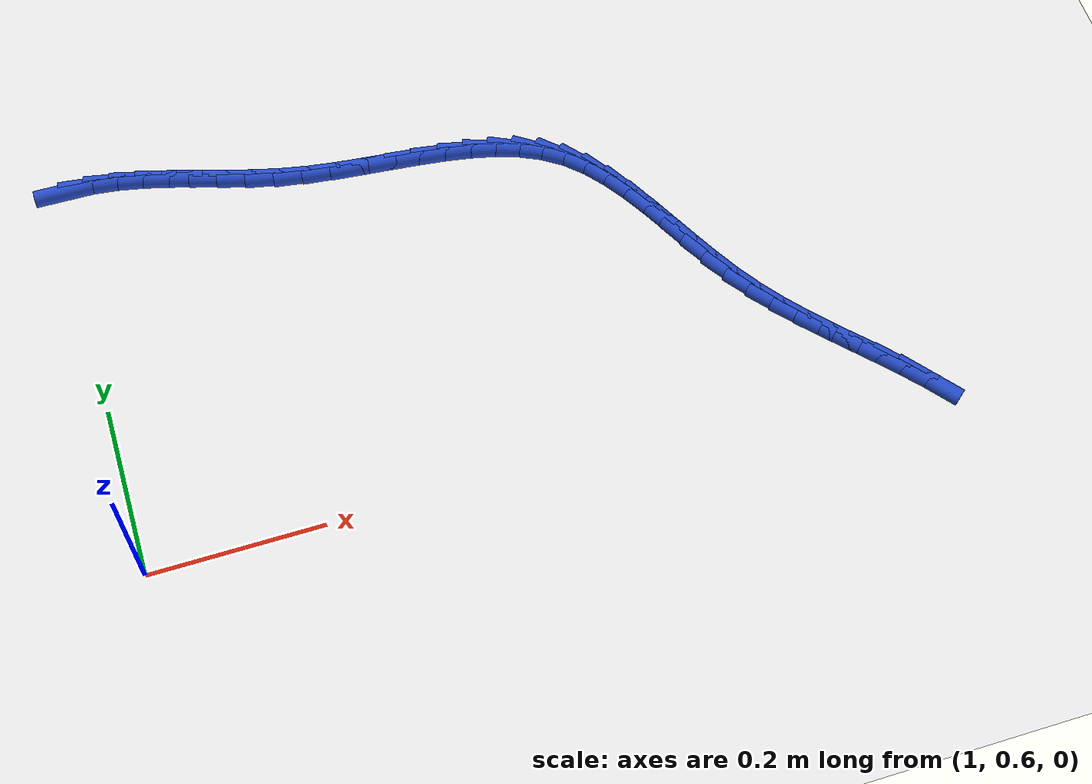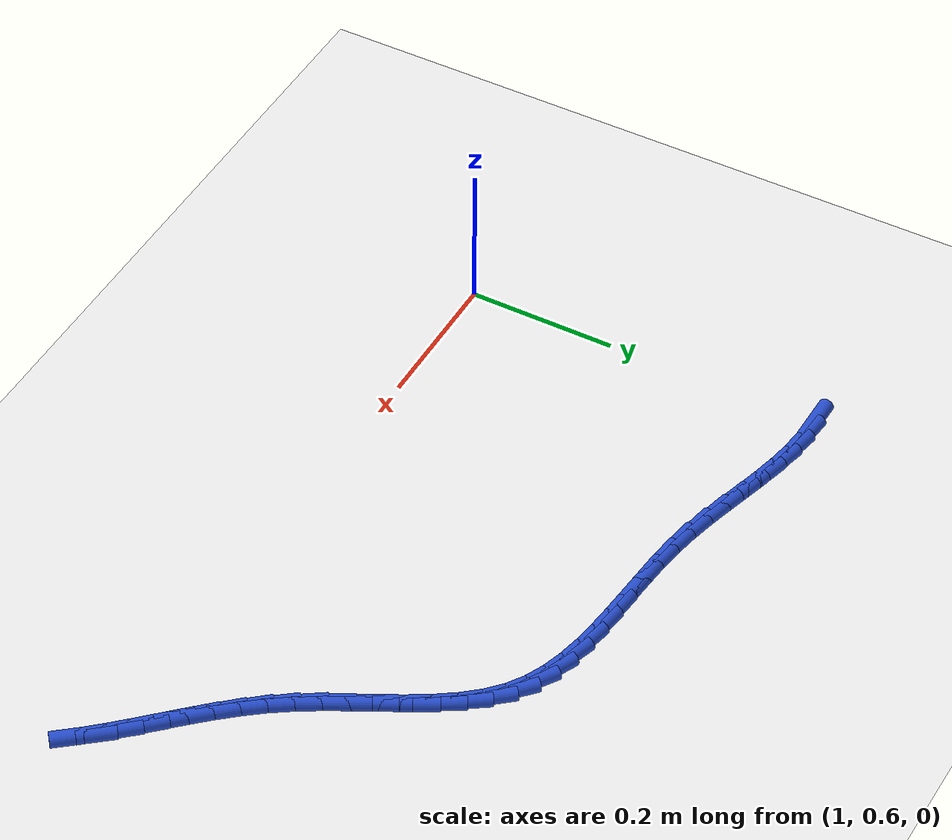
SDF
<sdf version="1.6">
 <world name="default">
  <model name="ground_plane">
   <static>1</static>
   <link name="link">
    <collision name="collision">
     <geometry><plane><normal>0 0 1</normal><size>100 100</size></plane></geometry>
     <surface><friction><ode><mu>100</mu><mu2>50</mu2></ode></friction></surface>
    </collision>
    <visual name="visual">
     <cast_shadows>0</cast_shadows>
     <geometry><plane><normal>0 0 1</normal><size>100 100</size></plane></geometry>
     <material>
      <script><uri>file://media/materials/scripts/gazebo.material</uri><name>Gazebo/WhiteGlow</name></script>
     </material>
    </visual>
   </link>
  </model>
  <model name="line">
   <link name="link_52">
    <pose>1.0129617833352642 1.0928543033502458 0.01 0 1.57 -0.010875138252583438</pose>
    <collision name="collision">
     <geometry><cylinder><radius>0.01</radius><length>0.08</length></cylinder></geometry>
    </collision>
    <visual name="visual">
     <material>
      <script><name>Gazebo/Blue</name><uri>file://media/materials/scripts/gazebo.material</uri></script>
     </material>
     <geometry><cylinder><radius>0.01</radius><length>0.08</length></cylinder></geometry>
    </visual>
   </link>
   <link name="link_53">
    <pose>1.0419413234114148 1.0925391344204574 0.01 0 1.57 -0.11574545926502423</pose>
    <collision name="collision">
     <geometry><cylinder><radius>0.01</radius><length>0.08</length></cylinder></geometry>
    </collision>
    <visual name="visual">
     <material>
      <script><name>Gazebo/Blue</name><uri>file://media/materials/scripts/gazebo.material</uri></script>
     </material>
     <geometry><cylinder><radius>0.01</radius><length>0.08</length></cylinder></geometry>
    </visual>
   </link>
   <link name="link_54">
    <pose>1.0712349352900807 1.0891333089646507 0.01 0 1.57 -0.1941256304616018</pose>
    <collision name="collision">
     <geometry><cylinder><radius>0.01</radius><length>0.08</length></cylinder></geometry>
    </collision>
    <visual name="visual">
     <material>
      <script><name>Gazebo/Blue</name><uri>file://media/materials/scripts/gazebo.material</uri></script>
     </material>
     <geometry><cylinder><radius>0.01</radius><length>0.08</length></cylinder></geometry>
    </visual>
   </link>
   <link name="link_55">
    <pose>1.1008868125040177 1.0833037059038246 0.01 0 1.57 -0.24726083537759808</pose>
    <collision name="collision">
     <geometry><cylinder><radius>0.01</radius><length>0.08</length></cylinder></geometry>
    </collision>
    <visual name="visual">
     <material>
      <script><name>Gazebo/Blue</name><uri>file://media/materials/scripts/gazebo.material</uri></script>
     </material>
     <geometry><cylinder><radius>0.01</radius><length>0.08</length></cylinder></geometry>
    </visual>
   </link>
   <link name="link_56">
    <pose>1.1309411485859837 1.0757172041589793 0.01 0 1.57 -0.27714603197713644</pose>
    <collision name="collision">
     <geometry><cylinder><radius>0.01</radius><length>0.08</length></cylinder></geometry>
    </collision>
    <visual name="visual">
     <material>
      <script><name>Gazebo/Blue</name><uri>file://media/materials/scripts/gazebo.material</uri></script>
     </material>
     <geometry><cylinder><radius>0.01</radius><length>0.08</length></cylinder></geometry>
    </visual>
   </link>
   <link name="link_57">
    <pose>1.1614421370687338 1.067040682651114 0.01 0 1.57 -0.28558859954213506</pose>
    <collision name="collision">
     <geometry><cylinder><radius>0.01</radius><length>0.08</length></cylinder></geometry>
    </collision>
    <visual name="visual">
     <material>
      <script><name>Gazebo/Blue</name><uri>file://media/materials/scripts/gazebo.material</uri></script>
     </material>
     <geometry><cylinder><radius>0.01</radius><length>0.08</length></cylinder></geometry>
    </visual>
   </link>
   <link name="link_58">
    <pose>1.1924339714850254 1.0579410203012292 0.01 0 1.57 -0.2738438243102279</pose>
    <collision name="collision">
     <geometry><cylinder><radius>0.01</radius><length>0.08</length></cylinder></geometry>
    </collision>
    <visual name="visual">
     <material>
      <script><name>Gazebo/Blue</name><uri>file://media/materials/scripts/gazebo.material</uri></script>
     </material>
     <geometry><cylinder><radius>0.01</radius><length>0.08</length></cylinder></geometry>
    </visual>
   </link>
   <link name="link_59">
    <pose>1.2239608453676154 1.0490850960303237 0.01 0 1.57 -0.2425963369911499</pose>
    <collision name="collision">
     <geometry><cylinder><radius>0.01</radius><length>0.08</length></cylinder></geometry>
    </collision>
    <visual name="visual">
     <material>
      <script><name>Gazebo/Blue</name><uri>file://media/materials/scripts/gazebo.material</uri></script>
     </material>
     <geometry><cylinder><radius>0.01</radius><length>0.08</length></cylinder></geometry>
    </visual>
   </link>
   <link name="link_60">
    <pose>1.25606695224926 1.0411397887593978 0.01 0 1.57 -0.1925973241402609</pose>
    <collision name="collision">
     <geometry><cylinder><radius>0.01</radius><length>0.08</length></cylinder></geometry>
    </collision>
    <visual name="visual">
     <material>
      <script><name>Gazebo/Blue</name><uri>file://media/materials/scripts/gazebo.material</uri></script>
     </material>
     <geometry><cylinder><radius>0.01</radius><length>0.08</length></cylinder></geometry>
    </visual>
   </link>
   <link name="link_61">
    <pose>1.2887923483782944 1.0347578593502977 0.01 0 1.57 -0.14027515189939124</pose>
    <collision name="collision">
     <geometry><cylinder><radius>0.01</radius><length>0.08</length></cylinder></geometry>
    </collision>
    <visual name="visual">
     <material>
      <script><name>Gazebo/Blue</name><uri>file://media/materials/scripts/gazebo.material</uri></script>
     </material>
     <geometry><cylinder><radius>0.01</radius><length>0.08</length></cylinder></geometry>
    </visual>
   </link>
   <link name="link_62">
    <pose>1.322022818554243 1.0300656331534572 0.01 0 1.57 -0.10573457963106597</pose>
    <collision name="collision">
     <geometry><cylinder><radius>0.01</radius><length>0.08</length></cylinder></geometry>
    </collision>
    <visual name="visual">
     <material>
      <script><name>Gazebo/Blue</name><uri>file://media/materials/scripts/gazebo.material</uri></script>
     </material>
     <geometry><cylinder><radius>0.01</radius><length>0.08</length></cylinder></geometry>
    </visual>
   </link>
   <link name="link_63">
    <pose>1.355447461116745 1.026518263128727 0.01 0 1.57 -0.08959134638462439</pose>
    <collision name="collision">
     <geometry><cylinder><radius>0.01</radius><length>0.08</length></cylinder></geometry>
    </collision>
    <visual name="visual">
     <material>
      <script><name>Gazebo/Blue</name><uri>file://media/materials/scripts/gazebo.material</uri></script>
     </material>
     <geometry><cylinder><radius>0.01</radius><length>0.08</length></cylinder></geometry>
    </visual>
   </link>
   <link name="link_64">
    <pose>1.388742596917879 1.0235273003689285 0.01 0 1.57 -0.09178839639875379</pose>
    <collision name="collision">
     <geometry><cylinder><radius>0.01</radius><length>0.08</length></cylinder></geometry>
    </collision>
    <visual name="visual">
     <material>
      <script><name>Gazebo/Blue</name><uri>file://media/materials/scripts/gazebo.material</uri></script>
     </material>
     <geometry><cylinder><radius>0.01</radius><length>0.08</length></cylinder></geometry>
    </visual>
   </link>
   <link name="link_65">
    <pose>1.4215845468097257 1.0205042959668826 0.01 0 1.57 -0.11314283208271267</pose>
    <collision name="collision">
     <geometry><cylinder><radius>0.01</radius><length>0.08</length></cylinder></geometry>
    </collision>
    <visual name="visual">
     <material>
      <script><name>Gazebo/Blue</name><uri>file://media/materials/scripts/gazebo.material</uri></script>
     </material>
     <geometry><cylinder><radius>0.01</radius><length>0.08</length></cylinder></geometry>
    </visual>
   </link>
   <link name="link_66">
    <pose>1.4536496316443654 1.01686080101541 0.01 0 1.57 -0.15544515642646436</pose>
    <collision name="collision">
     <geometry><cylinder><radius>0.01</radius><length>0.08</length></cylinder></geometry>
    </collision>
    <visual name="visual">
     <material>
      <script><name>Gazebo/Blue</name><uri>file://media/materials/scripts/gazebo.material</uri></script>
     </material>
     <geometry><cylinder><radius>0.01</radius><length>0.08</length></cylinder></geometry>
    </visual>
   </link>
   <link name="link_67">
    <pose>1.4846141722738768 1.0120083666073318 0.01 0 1.57 -0.22141920228450743</pose>
    <collision name="collision">
     <geometry><cylinder><radius>0.01</radius><length>0.08</length></cylinder></geometry>
    </collision>
    <visual name="visual">
     <material>
      <script><name>Gazebo/Blue</name><uri>file://media/materials/scripts/gazebo.material</uri></script>
     </material>
     <geometry><cylinder><radius>0.01</radius><length>0.08</length></cylinder></geometry>
    </visual>
   </link>
   <link name="link_68">
    <pose>1.5141544895503405 1.0053585438354693 0.01 0 1.57 -0.31433360237254365</pose>
    <collision name="collision">
     <geometry><cylinder><radius>0.01</radius><length>0.08</length></cylinder></geometry>
    </collision>
    <visual name="visual">
     <material>
      <script><name>Gazebo/Blue</name><uri>file://media/materials/scripts/gazebo.material</uri></script>
     </material>
     <geometry><cylinder><radius>0.01</radius><length>0.08</length></cylinder></geometry>
    </visual>
   </link>
   <link name="link_69">
    <pose>1.5419469043258363 0.9963228837926429 0.01 0 1.57 -0.4368471329134506</pose>
    <collision name="collision">
     <geometry><cylinder><radius>0.01</radius><length>0.08</length></cylinder></geometry>
    </collision>
    <visual name="visual">
     <material>
      <script><name>Gazebo/Blue</name><uri>file://media/materials/scripts/gazebo.material</uri></script>
     </material>
     <geometry><cylinder><radius>0.01</radius><length>0.08</length></cylinder></geometry>
    </visual>
   </link>
   <link name="link_70">
    <pose>1.567667737452443 0.9843129375716735 0.01 0 1.57 -0.5886170190808162</pose>
    <collision name="collision">
     <geometry><cylinder><radius>0.01</radius><length>0.08</length></cylinder></geometry>
    </collision>
    <visual name="visual">
     <material>
      <script><name>Gazebo/Blue</name><uri>file://media/materials/scripts/gazebo.material</uri></script>
     </material>
     <geometry><cylinder><radius>0.01</radius><length>0.08</length></cylinder></geometry>
    </visual>
   </link>
   <link name="link_71">
    <pose>1.5909940301017556 0.9687413654891458 0.01 0 1.57 -0.7495813461957737</pose>
    <collision name="collision">
     <geometry><cylinder><radius>0.01</radius><length>0.08</length></cylinder></geometry>
    </collision>
    <visual name="visual">
     <material>
      <script><name>Gazebo/Blue</name><uri>file://media/materials/scripts/gazebo.material</uri></script>
     </material>
     <geometry><cylinder><radius>0.01</radius><length>0.08</length></cylinder></geometry>
    </visual>
   </link>
   <link name="link_72">
    <pose>1.6118203990244238 0.9493558736266141 0.01 0 1.57 -0.8794598634114384</pose>
    <collision name="collision">
     <geometry><cylinder><radius>0.01</radius><length>0.08</length></cylinder></geometry>
    </collision>
    <visual name="visual">
     <material>
      <script><name>Gazebo/Blue</name><uri>file://media/materials/scripts/gazebo.material</uri></script>
     </material>
     <geometry><cylinder><radius>0.01</radius><length>0.08</length></cylinder></geometry>
    </visual>
   </link>
   <link name="link_73">
    <pose>1.6305634562664657 0.9267079913338813 0.01 0 1.57 -0.9739080413530348</pose>
    <collision name="collision">
     <geometry><cylinder><radius>0.01</radius><length>0.08</length></cylinder></geometry>
    </collision>
    <visual name="visual">
     <material>
      <script><name>Gazebo/Blue</name><uri>file://media/materials/scripts/gazebo.material</uri></script>
     </material>
     <geometry><cylinder><radius>0.01</radius><length>0.08</length></cylinder></geometry>
    </visual>
   </link>
   <link name="link_74">
    <pose>1.647716479812898 0.9014673062386637 0.01 0 1.57 -1.0369552021018358</pose>
    <collision name="collision">
     <geometry><cylinder><radius>0.01</radius><length>0.08</length></cylinder></geometry>
    </collision>
    <visual name="visual">
     <material>
      <script><name>Gazebo/Blue</name><uri>file://media/materials/scripts/gazebo.material</uri></script>
     </material>
     <geometry><cylinder><radius>0.01</radius><length>0.08</length></cylinder></geometry>
    </visual>
   </link>
   <link name="link_75">
    <pose>1.6637727476487396 0.8743034059686773 0.01 0 1.57 -1.0727436170641291</pose>
    <collision name="collision">
     <geometry><cylinder><radius>0.01</radius><length>0.08</length></cylinder></geometry>
    </collision>
    <visual name="visual">
     <material>
      <script><name>Gazebo/Blue</name><uri>file://media/materials/scripts/gazebo.material</uri></script>
     </material>
     <geometry><cylinder><radius>0.01</radius><length>0.08</length></cylinder></geometry>
    </visual>
   </link>
   <link name="link_76">
    <pose>1.6792255377590075 0.8458858781516372 0.01 0 1.57 -1.0841982680709366</pose>
    <collision name="collision">
     <geometry><cylinder><radius>0.01</radius><length>0.08</length></cylinder></geometry>
    </collision>
    <visual name="visual">
     <material>
      <script><name>Gazebo/Blue</name><uri>file://media/materials/scripts/gazebo.material</uri></script>
     </material>
     <geometry><cylinder><radius>0.01</radius><length>0.08</length></cylinder></geometry>
    </visual>
   </link>
   <link name="link_77">
    <pose>1.6945681281287193 0.8168843104152604 0.01 0 1.57 -1.0726953070698326</pose>
    <collision name="collision">
     <geometry><cylinder><radius>0.01</radius><length>0.08</length></cylinder></geometry>
    </collision>
    <visual name="visual">
     <material>
      <script><name>Gazebo/Blue</name><uri>file://media/materials/scripts/gazebo.material</uri></script>
     </material>
     <geometry><cylinder><radius>0.01</radius><length>0.08</length></cylinder></geometry>
    </visual>
   </link>
   <link name="link_78">
    <pose>1.7102937967428935 0.7879682903872625 0.01 0 1.57 -1.0381020073517435</pose>
    <collision name="collision">
     <geometry><cylinder><radius>0.01</radius><length>0.08</length></cylinder></geometry>
    </collision>
    <visual name="visual">
     <material>
      <script><name>Gazebo/Blue</name><uri>file://media/materials/scripts/gazebo.material</uri></script>
     </material>
     <geometry><cylinder><radius>0.01</radius><length>0.08</length></cylinder></geometry>
    </visual>
   </link>
   <link name="link_79">
    <pose>1.7268958215865458 0.7598074056953584 0.01 0 1.57 -0.9800896787414805</pose>
    <collision name="collision">
     <geometry><cylinder><radius>0.01</radius><length>0.08</length></cylinder></geometry>
    </collision>
    <visual name="visual">
     <material>
      <script><name>Gazebo/Blue</name><uri>file://media/materials/scripts/gazebo.material</uri></script>
     </material>
     <geometry><cylinder><radius>0.01</radius><length>0.08</length></cylinder></geometry>
    </visual>
   </link>
   <link name="link_80">
    <pose>1.7448435739711317 0.7330428677751545 0.01 0 1.57 -0.9172358337113629</pose>
    <collision name="collision">
     <geometry><cylinder><radius>0.01</radius><length>0.08</length></cylinder></geometry>
    </collision>
    <visual name="visual">
     <material>
      <script><name>Gazebo/Blue</name><uri>file://media/materials/scripts/gazebo.material</uri></script>
     </material>
     <geometry><cylinder><radius>0.01</radius><length>0.08</length></cylinder></geometry>
    </visual>
   </link>
   <link name="link_81">
    <pose>1.7641737441835172 0.7078023143171037 0.01 0 1.57 -0.8676791812387569</pose>
    <collision name="collision">
     <geometry><cylinder><radius>0.01</radius><length>0.08</length></cylinder></geometry>
    </collision>
    <visual name="visual">
     <material>
      <script><name>Gazebo/Blue</name><uri>file://media/materials/scripts/gazebo.material</uri></script>
     </material>
     <geometry><cylinder><radius>0.01</radius><length>0.08</length></cylinder></geometry>
    </visual>
   </link>
   <link name="link_82">
    <pose>1.7845468859056632 0.6837669250578925 0.01 0 1.57 -0.8328386760986537</pose>
    <collision name="collision">
     <geometry><cylinder><radius>0.01</radius><length>0.08</length></cylinder></geometry>
    </collision>
    <visual name="visual">
     <material>
      <script><name>Gazebo/Blue</name><uri>file://media/materials/scripts/gazebo.material</uri></script>
     </material>
     <geometry><cylinder><radius>0.01</radius><length>0.08</length></cylinder></geometry>
    </visual>
   </link>
   <link name="link_83">
    <pose>1.8056110246071904 0.6606030092856193 0.01 0 1.57 -0.8131673452226066</pose>
    <collision name="collision">
     <geometry><cylinder><radius>0.01</radius><length>0.08</length></cylinder></geometry>
    </collision>
    <visual name="visual">
     <material>
      <script><name>Gazebo/Blue</name><uri>file://media/materials/scripts/gazebo.material</uri></script>
     </material>
     <geometry><cylinder><radius>0.01</radius><length>0.08</length></cylinder></geometry>
    </visual>
   </link>
   <link name="link_84">
    <pose>1.827014185757719 0.6379768762883821 0.01 0 1.57 -0.8089450288613933</pose>
    <collision name="collision">
     <geometry><cylinder><radius>0.01</radius><length>0.08</length></cylinder></geometry>
    </collision>
    <visual name="visual">
     <material>
      <script><name>Gazebo/Blue</name><uri>file://media/materials/scripts/gazebo.material</uri></script>
     </material>
     <geometry><cylinder><radius>0.01</radius><length>0.08</length></cylinder></geometry>
    </visual>
   </link>
   <link name="link_85">
    <pose>1.8484043948268711 0.6155548353542791 0.01 0 1.57 -0.8204105804810243</pose>
    <collision name="collision">
     <geometry><cylinder><radius>0.01</radius><length>0.08</length></cylinder></geometry>
    </collision>
    <visual name="visual">
     <material>
      <script><name>Gazebo/Blue</name><uri>file://media/materials/scripts/gazebo.material</uri></script>
     </material>
     <geometry><cylinder><radius>0.01</radius><length>0.08</length></cylinder></geometry>
    </visual>
   </link>
   <link name="link_86">
    <pose>1.8694296772842656 0.5930031957714087 0.01 0 1.57 -0.8477903190574437</pose>
    <collision name="collision">
     <geometry><cylinder><radius>0.01</radius><length>0.08</length></cylinder></geometry>
    </collision>
    <visual name="visual">
     <material>
      <script><name>Gazebo/Blue</name><uri>file://media/materials/scripts/gazebo.material</uri></script>
     </material>
     <geometry><cylinder><radius>0.01</radius><length>0.08</length></cylinder></geometry>
    </visual>
   </link>
   <link name="link_87">
    <pose>1.8897380585995243 0.5699882668278689 0.01 0 1.57 -0.8912094683341767</pose>
    <collision name="collision">
     <geometry><cylinder><radius>0.01</radius><length>0.08</length></cylinder></geometry>
    </collision>
    <visual name="visual">
     <material>
      <script><name>Gazebo/Blue</name><uri>file://media/materials/scripts/gazebo.material</uri></script>
     </material>
     <geometry><cylinder><radius>0.01</radius><length>0.08</length></cylinder></geometry>
    </visual>
   </link>
  </model>
 </world>
</sdf>
